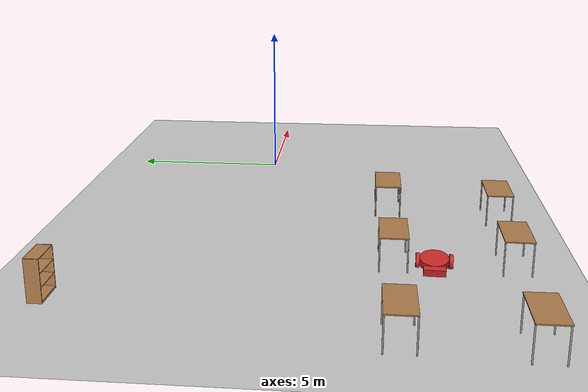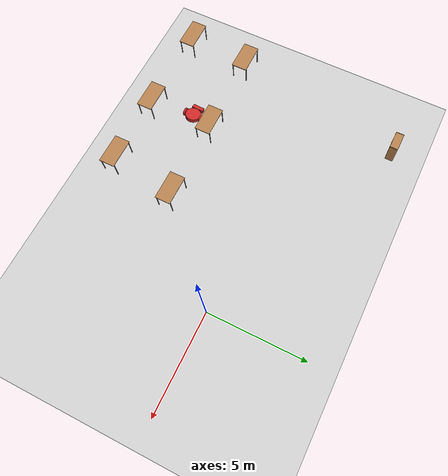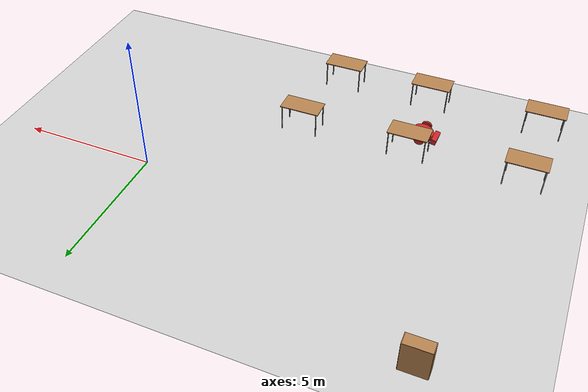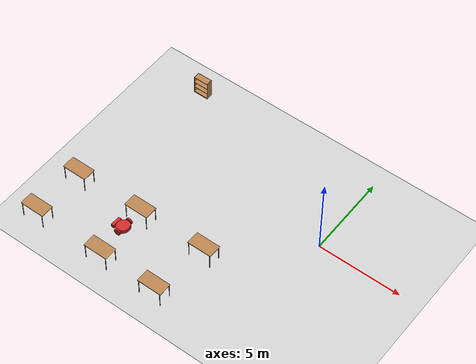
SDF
<sdf version="1.6">
 <world name="default">
  <model name="ground_plane">
   <static>1</static>
   <link name="link">
    <collision name="collision">
     <geometry><plane><normal>0 0 1</normal><size>100 100</size></plane></geometry>
     <surface><friction><ode><mu>100</mu><mu2>50</mu2></ode></friction></surface>
    </collision>
    <visual name="visual">
     <cast_shadows>0</cast_shadows>
     <geometry><plane><normal>0 0 1</normal><size>100 100</size></plane></geometry>
     <material>
      <script><uri>file://media/materials/scripts/gazebo.material</uri><name>Gazebo/Grey</name></script>
     </material>
    </visual>
   </link>
  </model>
  <model name="Robot">
   <link name="link_0">
    <pose>0 0 0.2 0 -0 0</pose>
    <inertial>
     <mass>1</mass>
     <inertia><ixx>0.145833</ixx><ixy>0</ixy><ixz>0</ixz><iyy>0.145833</iyy><iyz>0</iyz><izz>0.125</izz></inertia>
    </inertial>
    <visual name="visual">
     <geometry><cylinder><radius>0.4</radius><length>0.2</length></cylinder></geometry>
     <material>
      <lighting>1</lighting>
      <script><uri>file://media/materials/scripts/gazebo.material</uri><name>Gazebo/Red</name></script>
      <shader type="pixel"><normal_map>__default__</normal_map></shader>
      <ambient>1 0.1 0.1 1</ambient>
      <diffuse>1 0.1 0.1 1</diffuse>
      <specular>0.01 0.01 0.01 1</specular>
      <emissive>0 0 0 1</emissive>
     </material>
    </visual>
    <collision name="collision">
     <geometry><cylinder><radius>0.4</radius><length>0.2</length></cylinder></geometry>
     <surface>
      <friction>
       <ode><mu>1</mu><mu2>1</mu2><fdir1>0 0 0</fdir1><slip1>0</slip1><slip2>0</slip2></ode>
       <torsional>
        <coefficient>1</coefficient>
        <patch_radius>0</patch_radius>
        <surface_radius>0</surface_radius>
        <use_patch_radius>1</use_patch_radius>
        <ode><slip>0</slip></ode>
       </torsional>
      </friction>
      <bounce><restitution_coefficient>0</restitution_coefficient><threshold>1e+06</threshold></bounce>
      <contact>
       <collide_without_contact>0</collide_without_contact>
       <collide_without_contact_bitmask>1</collide_without_contact_bitmask>
       <collide_bitmask>1</collide_bitmask>
       <ode>
        <soft_cfm>0</soft_cfm>
        <soft_erp>0.2</soft_erp>
        <kp>1e+13</kp>
        <kd>1</kd>
        <max_vel>0.01</max_vel>
        <min_depth>0</min_depth>
       </ode>
       <bullet>
        <split_impulse>1</split_impulse>
        <split_impulse_penetration_threshold>-0.01</split_impulse_penetration_threshold>
        <soft_cfm>0</soft_cfm>
        <soft_erp>0.2</soft_erp>
        <kp>1e+13</kp>
        <kd>1</kd>
       </bullet>
      </contact>
     </surface>
    </collision>
   </link>
   <link name="link_1">
    <pose>0 -0.450019 0.2 1.5707 -0 0</pose>
    <inertial>
     <mass>1</mass>
     <inertia><ixx>0.145833</ixx><ixy>0</ixy><ixz>0</ixz><iyy>0.145833</iyy><iyz>0</iyz><izz>0.125</izz></inertia>
    </inertial>
    <visual name="visual">
     <geometry><cylinder><radius>0.2</radius><length>0.1</length></cylinder></geometry>
     <material>
      <lighting>1</lighting>
      <script><uri>file://media/materials/scripts/gazebo.material</uri><name>Gazebo/Red</name></script>
      <shader type="pixel"><normal_map>__default__</normal_map></shader>
      <ambient>1 0.1 0.1 1</ambient>
      <diffuse>1 0.1 0.1 1</diffuse>
      <specular>0.01 0.01 0.01 1</specular>
      <emissive>0 0 0 1</emissive>
     </material>
    </visual>
    <collision name="collision">
     <geometry><cylinder><radius>0.2</radius><length>0.1</length></cylinder></geometry>
     <surface>
      <friction>
       <ode><mu>1</mu><mu2>1</mu2><fdir1>0 0 0</fdir1><slip1>0</slip1><slip2>0</slip2></ode>
       <torsional>
        <coefficient>1</coefficient>
        <patch_radius>0</patch_radius>
        <surface_radius>0</surface_radius>
        <use_patch_radius>1</use_patch_radius>
        <ode><slip>0</slip></ode>
       </torsional>
      </friction>
      <bounce><restitution_coefficient>0</restitution_coefficient><threshold>1e+06</threshold></bounce>
      <contact>
       <collide_without_contact>0</collide_without_contact>
       <collide_without_contact_bitmask>1</collide_without_contact_bitmask>
       <collide_bitmask>1</collide_bitmask>
       <ode>
        <soft_cfm>0</soft_cfm>
        <soft_erp>0.2</soft_erp>
        <kp>1e+13</kp>
        <kd>1</kd>
        <max_vel>0.01</max_vel>
        <min_depth>0</min_depth>
       </ode>
       <bullet>
        <split_impulse>1</split_impulse>
        <split_impulse_penetration_threshold>-0.01</split_impulse_penetration_threshold>
        <soft_cfm>0</soft_cfm>
        <soft_erp>0.2</soft_erp>
        <kp>1e+13</kp>
        <kd>1</kd>
       </bullet>
      </contact>
     </surface>
    </collision>
   </link>
   <link name="link_1_clone">
    <pose>0 0.450019 0.2 1.5707 -0 0</pose>
    <inertial>
     <mass>1</mass>
     <inertia><ixx>0.145833</ixx><ixy>0</ixy><ixz>0</ixz><iyy>0.145833</iyy><iyz>0</iyz><izz>0.125</izz></inertia>
    </inertial>
    <visual name="visual">
     <geometry><cylinder><radius>0.2</radius><length>0.1</length></cylinder></geometry>
     <material>
      <lighting>1</lighting>
      <script><uri>file://media/materials/scripts/gazebo.material</uri><name>Gazebo/Red</name></script>
      <shader type="pixel"><normal_map>__default__</normal_map></shader>
      <ambient>1 0.1 0.1 1</ambient>
      <diffuse>1 0.1 0.1 1</diffuse>
      <specular>0.01 0.01 0.01 1</specular>
      <emissive>0 0 0 1</emissive>
     </material>
    </visual>
    <collision name="collision">
     <geometry><cylinder><radius>0.2</radius><length>0.1</length></cylinder></geometry>
     <surface>
      <friction>
       <ode><mu>1</mu><mu2>1</mu2><fdir1>0 0 0</fdir1><slip1>0</slip1><slip2>0</slip2></ode>
       <torsional>
        <coefficient>1</coefficient>
        <patch_radius>0</patch_radius>
        <surface_radius>0</surface_radius>
        <use_patch_radius>1</use_patch_radius>
        <ode><slip>0</slip></ode>
       </torsional>
      </friction>
      <bounce><restitution_coefficient>0</restitution_coefficient><threshold>1e+06</threshold></bounce>
      <contact>
       <collide_without_contact>0</collide_without_contact>
       <collide_without_contact_bitmask>1</collide_without_contact_bitmask>
       <collide_bitmask>1</collide_bitmask>
       <ode>
        <soft_cfm>0</soft_cfm>
        <soft_erp>0.2</soft_erp>
        <kp>1e+13</kp>
        <kd>1</kd>
        <max_vel>0.01</max_vel>
        <min_depth>0</min_depth>
       </ode>
       <bullet>
        <split_impulse>1</split_impulse>
        <split_impulse_penetration_threshold>-0.01</split_impulse_penetration_threshold>
        <soft_cfm>0</soft_cfm>
        <soft_erp>0.2</soft_erp>
        <kp>1e+13</kp>
        <kd>1</kd>
       </bullet>
      </contact>
     </surface>
    </collision>
   </link>
   <link name="link_2">
    <pose>-0.5 0 0.2 0 -0 0</pose>
    <inertial>
     <mass>0.1</mass>
     <inertia>
      <ixx>0.166667</ixx>
      <ixy>0</ixy>
      <ixz>0</ixz>
      <iyy>0.166667</iyy>
      <iyz>0</iyz>
      <izz>0.166667</izz>
     </inertia>
    </inertial>
    <visual name="visual">
     <geometry><box><size>0.2 0.6 0.2</size></box></geometry>
     <material>
      <lighting>1</lighting>
      <script><uri>file://media/materials/scripts/gazebo.material</uri><name>Gazebo/Red</name></script>
      <shader type="pixel"><normal_map>__default__</normal_map></shader>
      <ambient>1 0.1 0.1 1</ambient>
      <diffuse>1 0.1 0.1 1</diffuse>
      <specular>0.01 0.01 0.01 1</specular>
      <emissive>0 0 0 1</emissive>
     </material>
    </visual>
    <collision name="collision">
     <geometry><box><size>0.2 0.6 0.2</size></box></geometry>
     <surface>
      <friction>
       <ode><mu>1</mu><mu2>1</mu2><fdir1>0 0 0</fdir1><slip1>0</slip1><slip2>0</slip2></ode>
       <torsional>
        <coefficient>1</coefficient>
        <patch_radius>0</patch_radius>
        <surface_radius>0</surface_radius>
        <use_patch_radius>1</use_patch_radius>
        <ode><slip>0</slip></ode>
       </torsional>
      </friction>
      <bounce><restitution_coefficient>0</restitution_coefficient><threshold>1e+06</threshold></bounce>
      <contact>
       <collide_without_contact>0</collide_without_contact>
       <collide_without_contact_bitmask>1</collide_without_contact_bitmask>
       <collide_bitmask>1</collide_bitmask>
       <ode>
        <soft_cfm>0</soft_cfm>
        <soft_erp>0.2</soft_erp>
        <kp>1e+13</kp>
        <kd>1</kd>
        <max_vel>0.01</max_vel>
        <min_depth>0</min_depth>
       </ode>
       <bullet>
        <split_impulse>1</split_impulse>
        <split_impulse_penetration_threshold>-0.01</split_impulse_penetration_threshold>
        <soft_cfm>0</soft_cfm>
        <soft_erp>0.2</soft_erp>
        <kp>1e+13</kp>
        <kd>1</kd>
       </bullet>
      </contact>
     </surface>
    </collision>
   </link>
   <joint name="link_0_JOINT_0" type="revolute">
    <parent>link_0</parent>
    <child>link_1</child>
    <axis>
     <xyz>0 0 1</xyz>
     <use_parent_model_frame>0</use_parent_model_frame>
     <limit>
      <lower>-1.79769e+308</lower>
      <upper>1.79769e+308</upper>
      <effort>-1</effort>
      <velocity>-1</velocity>
     </limit>
     <dynamics>
      <spring_reference>0</spring_reference>
      <spring_stiffness>0</spring_stiffness>
      <damping>0</damping>
     </dynamics>
    </axis>
    <physics>
     <ode><limit><cfm>0</cfm><erp>0.2</erp></limit><suspension><cfm>0</cfm><erp>0.2</erp></suspension></ode>
    </physics>
   </joint>
   <joint name="link_0_JOINT_1" type="revolute">
    <parent>link_0</parent>
    <child>link_1_clone</child>
    <axis>
     <xyz>0 0 1</xyz>
     <use_parent_model_frame>0</use_parent_model_frame>
     <limit>
      <lower>-1.79769e+308</lower>
      <upper>1.79769e+308</upper>
      <effort>-1</effort>
      <velocity>-1</velocity>
     </limit>
     <dynamics>
      <spring_reference>0</spring_reference>
      <spring_stiffness>0</spring_stiffness>
      <damping>0</damping>
     </dynamics>
    </axis>
    <physics>
     <ode><limit><cfm>0</cfm><erp>0.2</erp></limit><suspension><cfm>0</cfm><erp>0.2</erp></suspension></ode>
    </physics>
   </joint>
   <joint name="link_0_JOINT_9" type="fixed">
    <parent>link_0</parent>
    <child>link_2</child>
    <physics>
     <ode><limit><cfm>0</cfm><erp>0.2</erp></limit><suspension><cfm>0</cfm><erp>0.2</erp></suspension></ode>
    </physics>
   </joint>
   <static>0</static>
   <pose>-8.73431 -5.35174 0.002882 3e-06 -0.169852 -0.039284</pose>
  </model>
  <model name="table">
   <static>1</static>
   <link name="link">
    <collision name="surface">
     <pose>0 0 1 0 -0 0</pose>
     <geometry><box><size>1.5 0.8 0.03</size></box></geometry>
     <surface><friction><ode><mu>0.6</mu><mu2>0.6</mu2></ode></friction></surface>
    </collision>
    <visual name="visual1">
     <pose>0 0 1 0 -0 0</pose>
     <geometry><box><size>1.5 0.8 0.03</size></box></geometry>
     <material>
      <script><uri>file://media/materials/scripts/gazebo.material</uri><name>Gazebo/Wood</name></script>
     </material>
    </visual>
    <collision name="front_left_leg">
     <pose>0.68 0.38 0.5 0 -0 0</pose>
     <geometry><cylinder><radius>0.02</radius><length>1</length></cylinder></geometry>
    </collision>
    <visual name="front_left_leg">
     <pose>0.68 0.38 0.5 0 -0 0</pose>
     <geometry><cylinder><radius>0.02</radius><length>1</length></cylinder></geometry>
     <material>
      <script><uri>file://media/materials/scripts/gazebo.material</uri><name>Gazebo/Grey</name></script>
     </material>
    </visual>
    <collision name="front_right_leg">
     <pose>0.68 -0.38 0.5 0 -0 0</pose>
     <geometry><cylinder><radius>0.02</radius><length>1</length></cylinder></geometry>
    </collision>
    <visual name="front_right_leg">
     <pose>0.68 -0.38 0.5 0 -0 0</pose>
     <geometry><cylinder><radius>0.02</radius><length>1</length></cylinder></geometry>
     <material>
      <script><uri>file://media/materials/scripts/gazebo.material</uri><name>Gazebo/Grey</name></script>
     </material>
    </visual>
    <collision name="back_right_leg">
     <pose>-0.68 -0.38 0.5 0 -0 0</pose>
     <geometry><cylinder><radius>0.02</radius><length>1</length></cylinder></geometry>
    </collision>
    <visual name="back_right_leg">
     <pose>-0.68 -0.38 0.5 0 -0 0</pose>
     <geometry><cylinder><radius>0.02</radius><length>1</length></cylinder></geometry>
     <material>
      <script><uri>file://media/materials/scripts/gazebo.material</uri><name>Gazebo/Grey</name></script>
     </material>
    </visual>
    <collision name="back_left_leg">
     <pose>-0.68 0.38 0.5 0 -0 0</pose>
     <geometry><cylinder><radius>0.02</radius><length>1</length></cylinder></geometry>
    </collision>
    <visual name="back_left_leg">
     <pose>-0.68 0.38 0.5 0 -0 0</pose>
     <geometry><cylinder><radius>0.02</radius><length>1</length></cylinder></geometry>
     <material>
      <script><uri>file://media/materials/scripts/gazebo.material</uri><name>Gazebo/Grey</name></script>
     </material>
    </visual>
   </link>
   <pose>-12.8404 -7.46561 0 0 -0 0</pose>
  </model>
  <model name="table_0">
   <static>1</static>
   <link name="link">
    <collision name="surface">
     <pose>0 0 1 0 -0 0</pose>
     <geometry><box><size>1.5 0.8 0.03</size></box></geometry>
     <surface><friction><ode><mu>0.6</mu><mu2>0.6</mu2></ode></friction></surface>
    </collision>
    <visual name="visual1">
     <pose>0 0 1 0 -0 0</pose>
     <geometry><box><size>1.5 0.8 0.03</size></box></geometry>
     <material>
      <script><uri>file://media/materials/scripts/gazebo.material</uri><name>Gazebo/Wood</name></script>
     </material>
    </visual>
    <collision name="front_left_leg">
     <pose>0.68 0.38 0.5 0 -0 0</pose>
     <geometry><cylinder><radius>0.02</radius><length>1</length></cylinder></geometry>
    </collision>
    <visual name="front_left_leg">
     <pose>0.68 0.38 0.5 0 -0 0</pose>
     <geometry><cylinder><radius>0.02</radius><length>1</length></cylinder></geometry>
     <material>
      <script><uri>file://media/materials/scripts/gazebo.material</uri><name>Gazebo/Grey</name></script>
     </material>
    </visual>
    <collision name="front_right_leg">
     <pose>0.68 -0.38 0.5 0 -0 0</pose>
     <geometry><cylinder><radius>0.02</radius><length>1</length></cylinder></geometry>
    </collision>
    <visual name="front_right_leg">
     <pose>0.68 -0.38 0.5 0 -0 0</pose>
     <geometry><cylinder><radius>0.02</radius><length>1</length></cylinder></geometry>
     <material>
      <script><uri>file://media/materials/scripts/gazebo.material</uri><name>Gazebo/Grey</name></script>
     </material>
    </visual>
    <collision name="back_right_leg">
     <pose>-0.68 -0.38 0.5 0 -0 0</pose>
     <geometry><cylinder><radius>0.02</radius><length>1</length></cylinder></geometry>
    </collision>
    <visual name="back_right_leg">
     <pose>-0.68 -0.38 0.5 0 -0 0</pose>
     <geometry><cylinder><radius>0.02</radius><length>1</length></cylinder></geometry>
     <material>
      <script><uri>file://media/materials/scripts/gazebo.material</uri><name>Gazebo/Grey</name></script>
     </material>
    </visual>
    <collision name="back_left_leg">
     <pose>-0.68 0.38 0.5 0 -0 0</pose>
     <geometry><cylinder><radius>0.02</radius><length>1</length></cylinder></geometry>
    </collision>
    <visual name="back_left_leg">
     <pose>-0.68 0.38 0.5 0 -0 0</pose>
     <geometry><cylinder><radius>0.02</radius><length>1</length></cylinder></geometry>
     <material>
      <script><uri>file://media/materials/scripts/gazebo.material</uri><name>Gazebo/Grey</name></script>
     </material>
    </visual>
   </link>
   <pose>-12.7027 -4.27231 0 0 -0 0</pose>
  </model>
  <model name="table_1">
   <static>1</static>
   <link name="link">
    <collision name="surface">
     <pose>0 0 1 0 -0 0</pose>
     <geometry><box><size>1.5 0.8 0.03</size></box></geometry>
     <surface><friction><ode><mu>0.6</mu><mu2>0.6</mu2></ode></friction></surface>
    </collision>
    <visual name="visual1">
     <pose>0 0 1 0 -0 0</pose>
     <geometry><box><size>1.5 0.8 0.03</size></box></geometry>
     <material>
      <script><uri>file://media/materials/scripts/gazebo.material</uri><name>Gazebo/Wood</name></script>
     </material>
    </visual>
    <collision name="front_left_leg">
     <pose>0.68 0.38 0.5 0 -0 0</pose>
     <geometry><cylinder><radius>0.02</radius><length>1</length></cylinder></geometry>
    </collision>
    <visual name="front_left_leg">
     <pose>0.68 0.38 0.5 0 -0 0</pose>
     <geometry><cylinder><radius>0.02</radius><length>1</length></cylinder></geometry>
     <material>
      <script><uri>file://media/materials/scripts/gazebo.material</uri><name>Gazebo/Grey</name></script>
     </material>
    </visual>
    <collision name="front_right_leg">
     <pose>0.68 -0.38 0.5 0 -0 0</pose>
     <geometry><cylinder><radius>0.02</radius><length>1</length></cylinder></geometry>
    </collision>
    <visual name="front_right_leg">
     <pose>0.68 -0.38 0.5 0 -0 0</pose>
     <geometry><cylinder><radius>0.02</radius><length>1</length></cylinder></geometry>
     <material>
      <script><uri>file://media/materials/scripts/gazebo.material</uri><name>Gazebo/Grey</name></script>
     </material>
    </visual>
    <collision name="back_right_leg">
     <pose>-0.68 -0.38 0.5 0 -0 0</pose>
     <geometry><cylinder><radius>0.02</radius><length>1</length></cylinder></geometry>
    </collision>
    <visual name="back_right_leg">
     <pose>-0.68 -0.38 0.5 0 -0 0</pose>
     <geometry><cylinder><radius>0.02</radius><length>1</length></cylinder></geometry>
     <material>
      <script><uri>file://media/materials/scripts/gazebo.material</uri><name>Gazebo/Grey</name></script>
     </material>
    </visual>
    <collision name="back_left_leg">
     <pose>-0.68 0.38 0.5 0 -0 0</pose>
     <geometry><cylinder><radius>0.02</radius><length>1</length></cylinder></geometry>
    </collision>
    <visual name="back_left_leg">
     <pose>-0.68 0.38 0.5 0 -0 0</pose>
     <geometry><cylinder><radius>0.02</radius><length>1</length></cylinder></geometry>
     <material>
      <script><uri>file://media/materials/scripts/gazebo.material</uri><name>Gazebo/Grey</name></script>
     </material>
    </visual>
   </link>
   <pose>-8.46871 -7.52784 0 0 -0 0</pose>
  </model>
  <model name="table_2">
   <static>1</static>
   <link name="link">
    <collision name="surface">
     <pose>0 0 1 0 -0 0</pose>
     <geometry><box><size>1.5 0.8 0.03</size></box></geometry>
     <surface><friction><ode><mu>0.6</mu><mu2>0.6</mu2></ode></friction></surface>
    </collision>
    <visual name="visual1">
     <pose>0 0 1 0 -0 0</pose>
     <geometry><box><size>1.5 0.8 0.03</size></box></geometry>
     <material>
      <script><uri>file://media/materials/scripts/gazebo.material</uri><name>Gazebo/Wood</name></script>
     </material>
    </visual>
    <collision name="front_left_leg">
     <pose>0.68 0.38 0.5 0 -0 0</pose>
     <geometry><cylinder><radius>0.02</radius><length>1</length></cylinder></geometry>
    </collision>
    <visual name="front_left_leg">
     <pose>0.68 0.38 0.5 0 -0 0</pose>
     <geometry><cylinder><radius>0.02</radius><length>1</length></cylinder></geometry>
     <material>
      <script><uri>file://media/materials/scripts/gazebo.material</uri><name>Gazebo/Grey</name></script>
     </material>
    </visual>
    <collision name="front_right_leg">
     <pose>0.68 -0.38 0.5 0 -0 0</pose>
     <geometry><cylinder><radius>0.02</radius><length>1</length></cylinder></geometry>
    </collision>
    <visual name="front_right_leg">
     <pose>0.68 -0.38 0.5 0 -0 0</pose>
     <geometry><cylinder><radius>0.02</radius><length>1</length></cylinder></geometry>
     <material>
      <script><uri>file://media/materials/scripts/gazebo.material</uri><name>Gazebo/Grey</name></script>
     </material>
    </visual>
    <collision name="back_right_leg">
     <pose>-0.68 -0.38 0.5 0 -0 0</pose>
     <geometry><cylinder><radius>0.02</radius><length>1</length></cylinder></geometry>
    </collision>
    <visual name="back_right_leg">
     <pose>-0.68 -0.38 0.5 0 -0 0</pose>
     <geometry><cylinder><radius>0.02</radius><length>1</length></cylinder></geometry>
     <material>
      <script><uri>file://media/materials/scripts/gazebo.material</uri><name>Gazebo/Grey</name></script>
     </material>
    </visual>
    <collision name="back_left_leg">
     <pose>-0.68 0.38 0.5 0 -0 0</pose>
     <geometry><cylinder><radius>0.02</radius><length>1</length></cylinder></geometry>
    </collision>
    <visual name="back_left_leg">
     <pose>-0.68 0.38 0.5 0 -0 0</pose>
     <geometry><cylinder><radius>0.02</radius><length>1</length></cylinder></geometry>
     <material>
      <script><uri>file://media/materials/scripts/gazebo.material</uri><name>Gazebo/Grey</name></script>
     </material>
    </visual>
   </link>
   <pose>-8.49583 -4.23251 0 0 -0 0</pose>
  </model>
  <model name="table_3">
   <static>1</static>
   <link name="link">
    <collision name="surface">
     <pose>0 0 1 0 -0 0</pose>
     <geometry><box><size>1.5 0.8 0.03</size></box></geometry>
     <surface><friction><ode><mu>0.6</mu><mu2>0.6</mu2></ode></friction></surface>
    </collision>
    <visual name="visual1">
     <pose>0 0 1 0 -0 0</pose>
     <geometry><box><size>1.5 0.8 0.03</size></box></geometry>
     <material>
      <script><uri>file://media/materials/scripts/gazebo.material</uri><name>Gazebo/Wood</name></script>
     </material>
    </visual>
    <collision name="front_left_leg">
     <pose>0.68 0.38 0.5 0 -0 0</pose>
     <geometry><cylinder><radius>0.02</radius><length>1</length></cylinder></geometry>
    </collision>
    <visual name="front_left_leg">
     <pose>0.68 0.38 0.5 0 -0 0</pose>
     <geometry><cylinder><radius>0.02</radius><length>1</length></cylinder></geometry>
     <material>
      <script><uri>file://media/materials/scripts/gazebo.material</uri><name>Gazebo/Grey</name></script>
     </material>
    </visual>
    <collision name="front_right_leg">
     <pose>0.68 -0.38 0.5 0 -0 0</pose>
     <geometry><cylinder><radius>0.02</radius><length>1</length></cylinder></geometry>
    </collision>
    <visual name="front_right_leg">
     <pose>0.68 -0.38 0.5 0 -0 0</pose>
     <geometry><cylinder><radius>0.02</radius><length>1</length></cylinder></geometry>
     <material>
      <script><uri>file://media/materials/scripts/gazebo.material</uri><name>Gazebo/Grey</name></script>
     </material>
    </visual>
    <collision name="back_right_leg">
     <pose>-0.68 -0.38 0.5 0 -0 0</pose>
     <geometry><cylinder><radius>0.02</radius><length>1</length></cylinder></geometry>
    </collision>
    <visual name="back_right_leg">
     <pose>-0.68 -0.38 0.5 0 -0 0</pose>
     <geometry><cylinder><radius>0.02</radius><length>1</length></cylinder></geometry>
     <material>
      <script><uri>file://media/materials/scripts/gazebo.material</uri><name>Gazebo/Grey</name></script>
     </material>
    </visual>
    <collision name="back_left_leg">
     <pose>-0.68 0.38 0.5 0 -0 0</pose>
     <geometry><cylinder><radius>0.02</radius><length>1</length></cylinder></geometry>
    </collision>
    <visual name="back_left_leg">
     <pose>-0.68 0.38 0.5 0 -0 0</pose>
     <geometry><cylinder><radius>0.02</radius><length>1</length></cylinder></geometry>
     <material>
      <script><uri>file://media/materials/scripts/gazebo.material</uri><name>Gazebo/Grey</name></script>
     </material>
    </visual>
   </link>
   <pose>-4.365 -4.15692 0 0 -0 0</pose>
  </model>
  <model name="table_4">
   <static>1</static>
   <link name="link">
    <collision name="surface">
     <pose>0 0 1 0 -0 0</pose>
     <geometry><box><size>1.5 0.8 0.03</size></box></geometry>
     <surface><friction><ode><mu>0.6</mu><mu2>0.6</mu2></ode></friction></surface>
    </collision>
    <visual name="visual1">
     <pose>0 0 1 0 -0 0</pose>
     <geometry><box><size>1.5 0.8 0.03</size></box></geometry>
     <material>
      <script><uri>file://media/materials/scripts/gazebo.material</uri><name>Gazebo/Wood</name></script>
     </material>
    </visual>
    <collision name="front_left_leg">
     <pose>0.68 0.38 0.5 0 -0 0</pose>
     <geometry><cylinder><radius>0.02</radius><length>1</length></cylinder></geometry>
    </collision>
    <visual name="front_left_leg">
     <pose>0.68 0.38 0.5 0 -0 0</pose>
     <geometry><cylinder><radius>0.02</radius><length>1</length></cylinder></geometry>
     <material>
      <script><uri>file://media/materials/scripts/gazebo.material</uri><name>Gazebo/Grey</name></script>
     </material>
    </visual>
    <collision name="front_right_leg">
     <pose>0.68 -0.38 0.5 0 -0 0</pose>
     <geometry><cylinder><radius>0.02</radius><length>1</length></cylinder></geometry>
    </collision>
    <visual name="front_right_leg">
     <pose>0.68 -0.38 0.5 0 -0 0</pose>
     <geometry><cylinder><radius>0.02</radius><length>1</length></cylinder></geometry>
     <material>
      <script><uri>file://media/materials/scripts/gazebo.material</uri><name>Gazebo/Grey</name></script>
     </material>
    </visual>
    <collision name="back_right_leg">
     <pose>-0.68 -0.38 0.5 0 -0 0</pose>
     <geometry><cylinder><radius>0.02</radius><length>1</length></cylinder></geometry>
    </collision>
    <visual name="back_right_leg">
     <pose>-0.68 -0.38 0.5 0 -0 0</pose>
     <geometry><cylinder><radius>0.02</radius><length>1</length></cylinder></geometry>
     <material>
      <script><uri>file://media/materials/scripts/gazebo.material</uri><name>Gazebo/Grey</name></script>
     </material>
    </visual>
    <collision name="back_left_leg">
     <pose>-0.68 0.38 0.5 0 -0 0</pose>
     <geometry><cylinder><radius>0.02</radius><length>1</length></cylinder></geometry>
    </collision>
    <visual name="back_left_leg">
     <pose>-0.68 0.38 0.5 0 -0 0</pose>
     <geometry><cylinder><radius>0.02</radius><length>1</length></cylinder></geometry>
     <material>
      <script><uri>file://media/materials/scripts/gazebo.material</uri><name>Gazebo/Grey</name></script>
     </material>
    </visual>
   </link>
   <pose>-4.90105 -7.54947 0 0 -0 0</pose>
  </model>
  <model name="bookshelf_0">
   <static>1</static>
   <link name="link">
    <inertial><mass>1</mass></inertial>
    <collision name="back">
     <pose>0 0.005 0.6 0 -0 0</pose>
     <geometry><box><size>0.9 0.01 1.2</size></box></geometry>
    </collision>
    <visual name="visual1">
     <pose>0 0.005 0.6 0 -0 0</pose>
     <geometry><box><size>0.9 0.01 1.2</size></box></geometry>
     <material>
      <script><uri>file://media/materials/scripts/gazebo.material</uri><name>Gazebo/Wood</name></script>
     </material>
    </visual>
    <collision name="left_side">
     <pose>0.45 -0.195 0.6 0 -0 0</pose>
     <geometry><box><size>0.02 0.4 1.2</size></box></geometry>
    </collision>
    <visual name="visual2">
     <pose>0.45 -0.195 0.6 0 -0 0</pose>
     <geometry><box><size>0.02 0.4 1.2</size></box></geometry>
     <material>
      <script><uri>file://media/materials/scripts/gazebo.material</uri><name>Gazebo/Wood</name></script>
     </material>
    </visual>
    <collision name="right_side">
     <pose>-0.45 -0.195 0.6 0 -0 0</pose>
     <geometry><box><size>0.02 0.4 1.2</size></box></geometry>
    </collision>
    <visual name="visual3">
     <pose>-0.45 -0.195 0.6 0 -0 0</pose>
     <geometry><box><size>0.02 0.4 1.2</size></box></geometry>
     <material>
      <script><uri>file://media/materials/scripts/gazebo.material</uri><name>Gazebo/Wood</name></script>
     </material>
    </visual>
    <collision name="bottom">
     <pose>0 -0.195 0.03 0 -0 0</pose>
     <geometry><box><size>0.88 0.4 0.06</size></box></geometry>
    </collision>
    <visual name="visual4">
     <pose>0 -0.195 0.03 0 -0 0</pose>
     <geometry><box><size>0.88 0.4 0.06</size></box></geometry>
     <material>
      <script><uri>file://media/materials/scripts/gazebo.material</uri><name>Gazebo/Wood</name></script>
     </material>
    </visual>
    <collision name="top">
     <pose>0 -0.195 1.19 0 -0 0</pose>
     <geometry><box><size>0.88 0.4 0.02</size></box></geometry>
    </collision>
    <visual name="visual5">
     <pose>0 -0.195 1.19 0 -0 0</pose>
     <geometry><box><size>0.88 0.4 0.02</size></box></geometry>
     <material>
      <script><uri>file://media/materials/scripts/gazebo.material</uri><name>Gazebo/Wood</name></script>
     </material>
    </visual>
    <collision name="low_shelf">
     <pose>0 -0.195 0.43 0 -0 0</pose>
     <geometry><box><size>0.88 0.4 0.02</size></box></geometry>
    </collision>
    <visual name="visual6">
     <pose>0 -0.195 0.43 0 -0 0</pose>
     <geometry><box><size>0.88 0.4 0.02</size></box></geometry>
     <material>
      <script><uri>file://media/materials/scripts/gazebo.material</uri><name>Gazebo/Wood</name></script>
     </material>
    </visual>
    <collision name="high_shelf">
     <pose>0 -0.195 0.8 0 -0 0</pose>
     <geometry><box><size>0.88 0.4 0.02</size></box></geometry>
    </collision>
    <visual name="visual7">
     <pose>0 -0.195 0.8 0 -0 0</pose>
     <geometry><box><size>0.88 0.4 0.02</size></box></geometry>
     <material>
      <script><uri>file://media/materials/scripts/gazebo.material</uri><name>Gazebo/Wood</name></script>
     </material>
    </visual>
   </link>
   <pose>-11.3136 4.86135 0 0 -0 0</pose>
  </model>
 </world>
</sdf>
